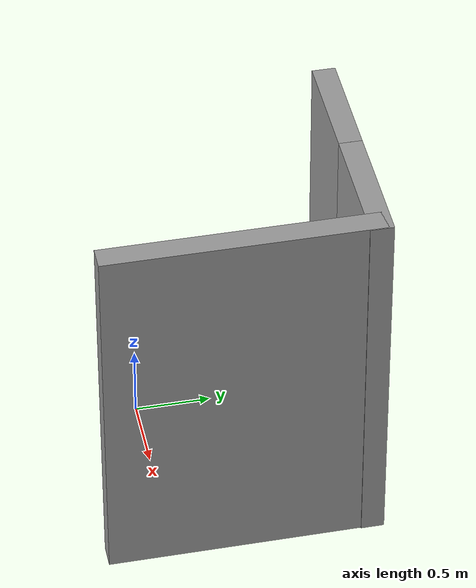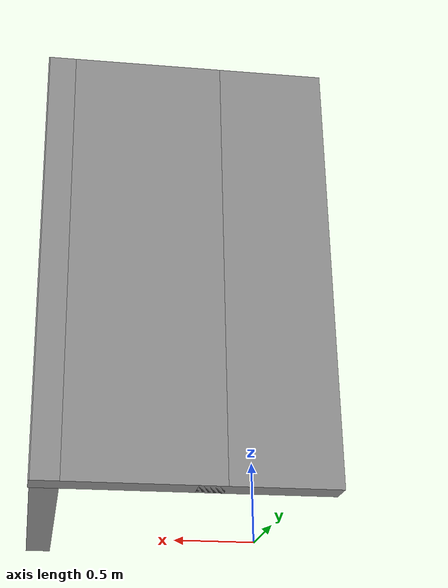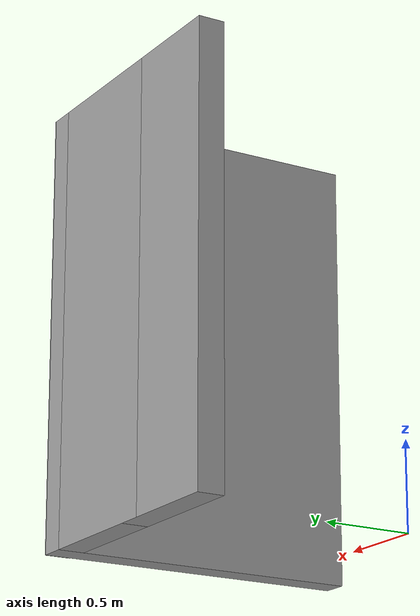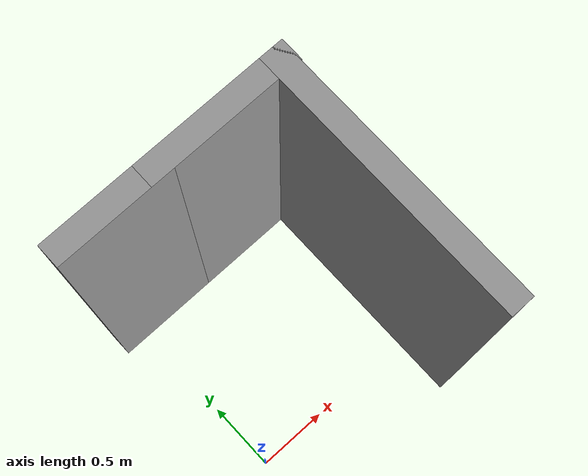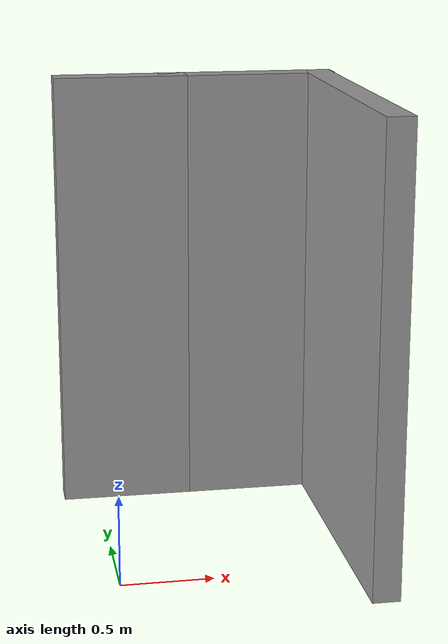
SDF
<?xml version='1.0'?>
<sdf version='1.7'>
  <model name='map_test3'>
    <pose>0.603314 0.467796 0 0 -0 0</pose>
    <link name='Wall_0'>
      <collision name='Wall_0_Collision'>
        <geometry>
          <box>
            <size>1.79604 0.15 2.5</size>
          </box>
        </geometry>
        <pose>0 0 1.25 0 -0 0</pose>
      </collision>
      <visual name='Wall_0_Visual'>
        <pose>0 0 1.25 0 -0 0</pose>
        <geometry>
          <box>
            <size>1.79604 0.15 2.5</size>
          </box>
        </geometry>
        <material>
          <script>
            <uri>file://media/materials/scripts/gazebo.material</uri>
            <name>Gazebo/Grey</name>
          </script>
          <ambient>1 1 1 1</ambient>
        </material>
        <meta>
          <layer>0</layer>
        </meta>
      </visual>
      <pose>0.718425 0 0 0 -0 -1.5708</pose>
    </link>
    <link name='Wall_2'>
      <collision name='Wall_2_Collision'>
        <geometry>
          <box>
            <size>1 0.15 2.5</size>
          </box>
        </geometry>
        <pose>0 0 1.25 0 -0 0</pose>
      </collision>
      <visual name='Wall_2_Visual'>
        <pose>0 0 1.25 0 -0 0</pose>
        <geometry>
          <box>
            <size>1 0.15 2.5</size>
          </box>
        </geometry>
        <material>
          <script>
            <uri>file://media/materials/scripts/gazebo.material</uri>
            <name>Gazebo/Grey</name>
          </script>
          <ambient>1 1 1 1</ambient>
        </material>
        <meta>
          <layer>0</layer>
        </meta>
      </visual>
      <pose>0.3 0.823013 0 0 -0 3.14159</pose>
    </link>
    <link name='Wall_4'>
      <collision name='Wall_4_Collision'>
        <geometry>
          <box>
            <size>0.75 0.15 2.5</size>
          </box>
        </geometry>
        <pose>0 0 1.25 0 -0 0</pose>
      </collision>
      <visual name='Wall_4_Visual'>
        <pose>0 0 1.25 0 -0 0</pose>
        <geometry>
          <box>
            <size>0.75 0.15 2.5</size>
          </box>
        </geometry>
        <material>
          <script>
            <uri>file://media/materials/scripts/gazebo.material</uri>
            <name>Gazebo/Grey</name>
          </script>
          <ambient>1 1 1 1</ambient>
        </material>
        <meta>
          <layer>0</layer>
        </meta>
      </visual>
      <pose>-0.425 0.823013 0 0 -0 3.14159</pose>
    </link>
    <static>1</static>
  </model>
</sdf>
